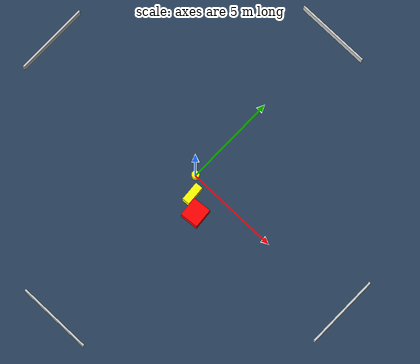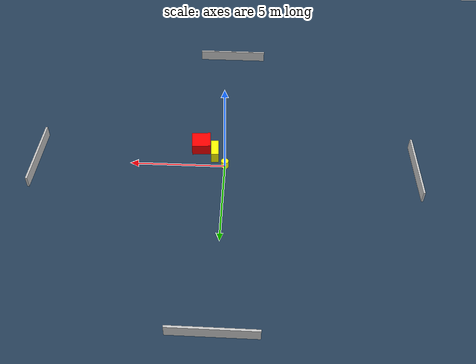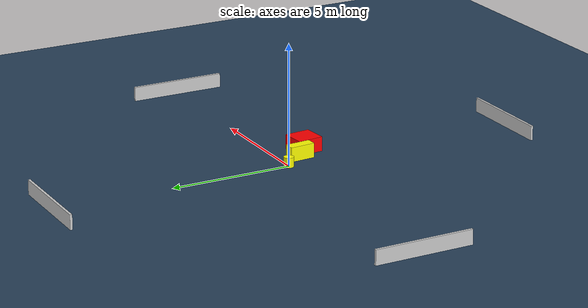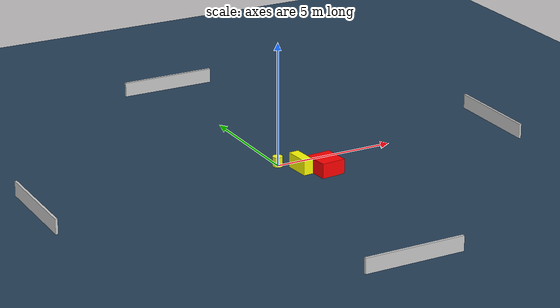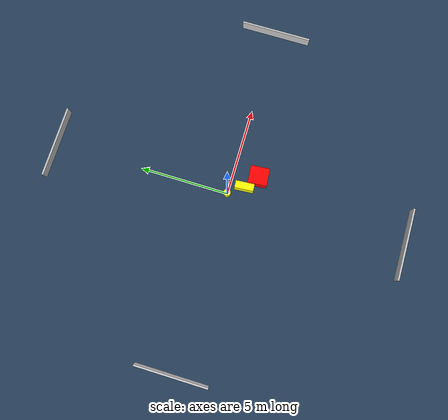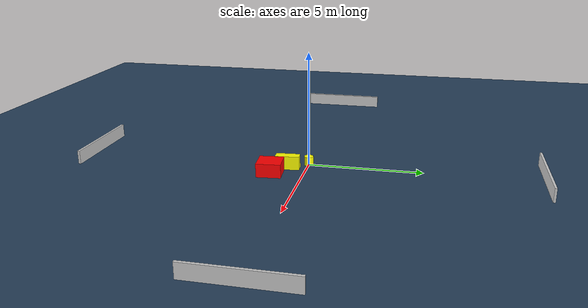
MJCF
<?xml version="1.0" ?>
<mujoco model="generated_environment">
  <option timestep="0.01" integrator="RK4" cone="elliptic"/>
  <default>
    <geom density="1"/>
  </default>
  <asset>
    <texture builtin="gradient" height="3072" name="skybox" rgb1="0.3 0.5 0.7" rgb2="0 0 0" type="skybox" width="512"/>
    <texture builtin="checker" height="300" name="groundplane" rgb1="0.2 0.3 0.4" rgb2="0.1 0.2 0.3" type="2d" width="300"/>
    <material name="groundplane" reflectance="0.2" texrepeat="5 5" texture="groundplane"/>
  </asset>
  <worldbody>
    <light dir="0 0 -1" directional="true" pos="0 0 1.5"/>
    <geom condim="3" friction="0.5 0.005 0.001" material="groundplane" name="floor" pos="0 0 0" size="0 0 0.05" type="plane"/>
    <body name="walls">
      <geom name="wall_1" condim="4" pos="-10.0 0.0 0.3" rgba="0.800000011920929 0.800000011920929 0.800000011920929 1.0" size="0.05 2.0 0.3" type="box"/>
      <geom name="wall_2" condim="4" pos="10.0 0.0 0.3" rgba="0.800000011920929 0.800000011920929 0.800000011920929 1.0" size="0.05 2.0 0.3" type="box"/>
      <geom name="wall_3" condim="4" pos="0.0 -10.0 0.3" rgba="0.800000011920929 0.800000011920929 0.800000011920929 1.0" size="2.0 0.05 0.3" type="box"/>
      <geom name="wall_4" condim="4" pos="0.0 10.0 0.3" rgba="0.800000011920929 0.800000011920929 0.800000011920929 1.0" size="2.0 0.05 0.3" type="box"/>
    </body>
    <body name="robot">
      <joint name="joint_x" type="slide" pos="0 0 0" axis="1 0 0"/>
      <joint name="joint_y" type="slide" pos="0 0 0" axis="0 1 0"/>
      <geom name="robot" type="cylinder" pos="0.0 0.0 0.2" size="0.2 0.2 0.0" mass="5.0" friction="1.0 0.005 0.0001" condim="4" rgba="1.0 1.0 0.0 1.0"/>
    </body>
    <body name="obstacle_1_movable">
      <geom name="obstacle_1_movable" condim="4" pos="0.5833912018181072 -0.8193531056200871 0.3" euler="0 0 94.19721413738986" friction="0.0 0.005 0.001" rgba="1.0 1.0 0.0 1.0" size="0.5253910372517696 0.2047556967889206 0.3" type="box" mass="0.1"/>
      <joint type="free"/>
    </body>
    <body name="obstacle_2_static">
      <geom name="obstacle_2_static" condim="4" pos="1.3528390486009336 -1.407237608739591 0.3" euler="0 0 274.8388755212935" friction="0.0 0.005 0.001" rgba="1.0 0.0 0.0 1.0" size="0.5307158277286206 0.49928709086227924 0.3" type="box"/>
    </body>
  </worldbody>
  <actuator>
    <motor name="actuator_x" joint="joint_x" gear="1" ctrlrange="-1 1"/>
    <motor name="actuator_y" joint="joint_y" gear="1" ctrlrange="-1 1"/>
  </actuator>
</mujoco>
